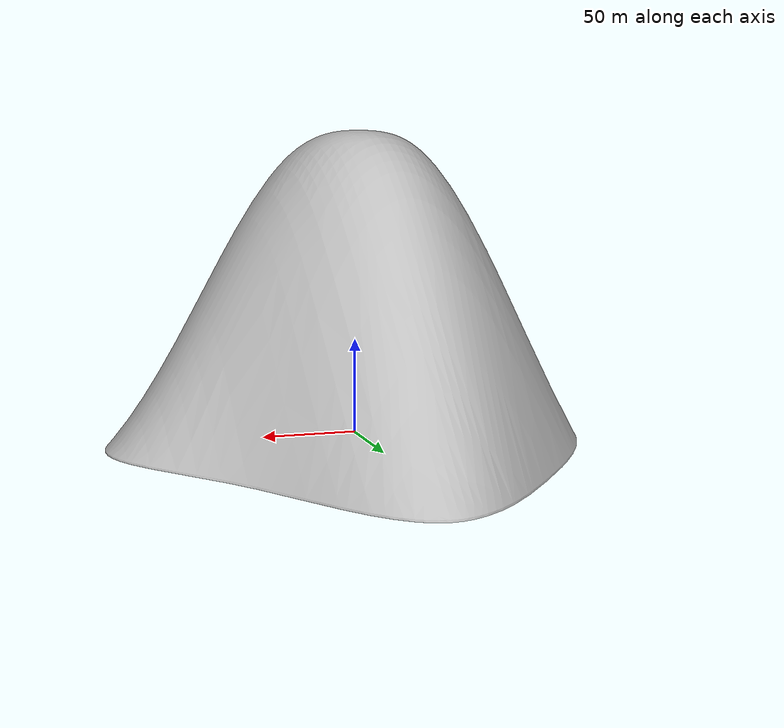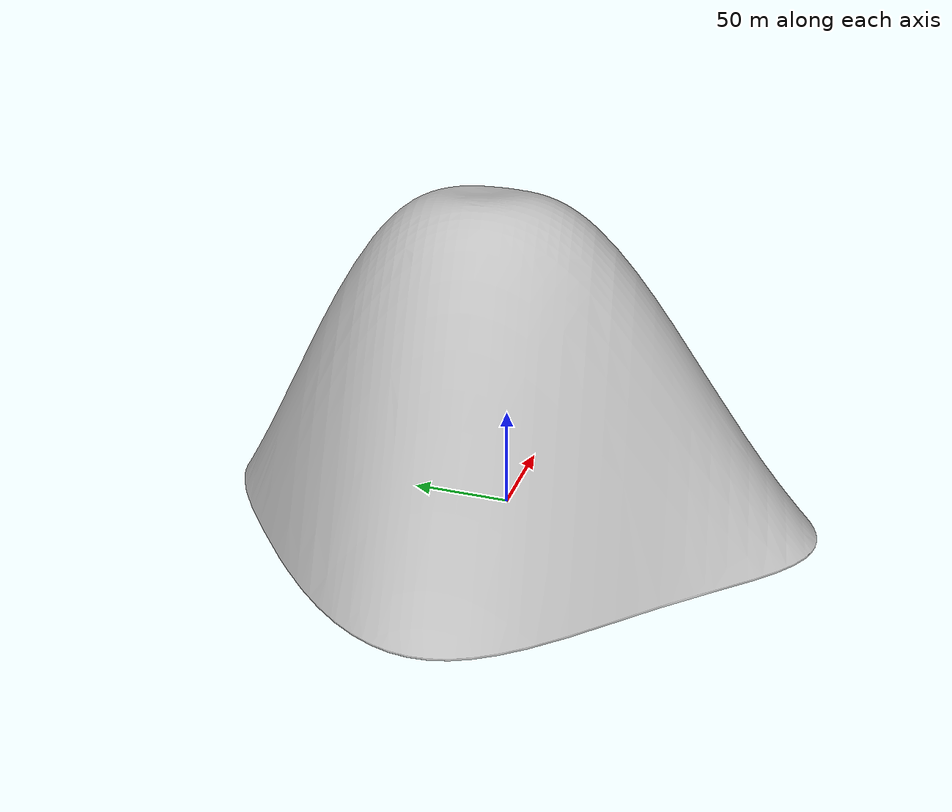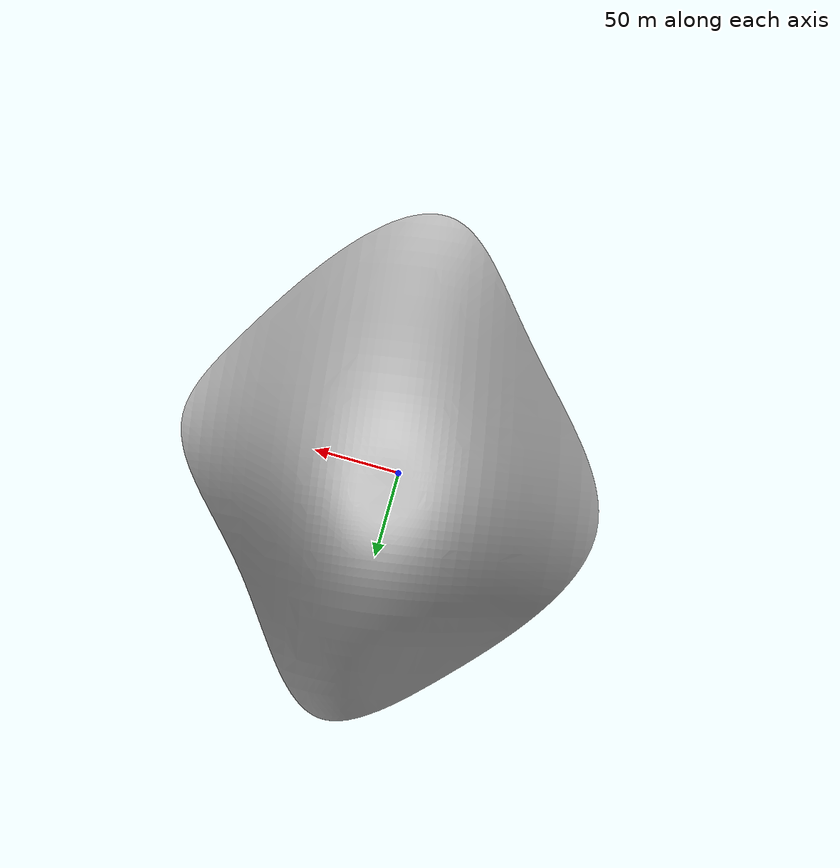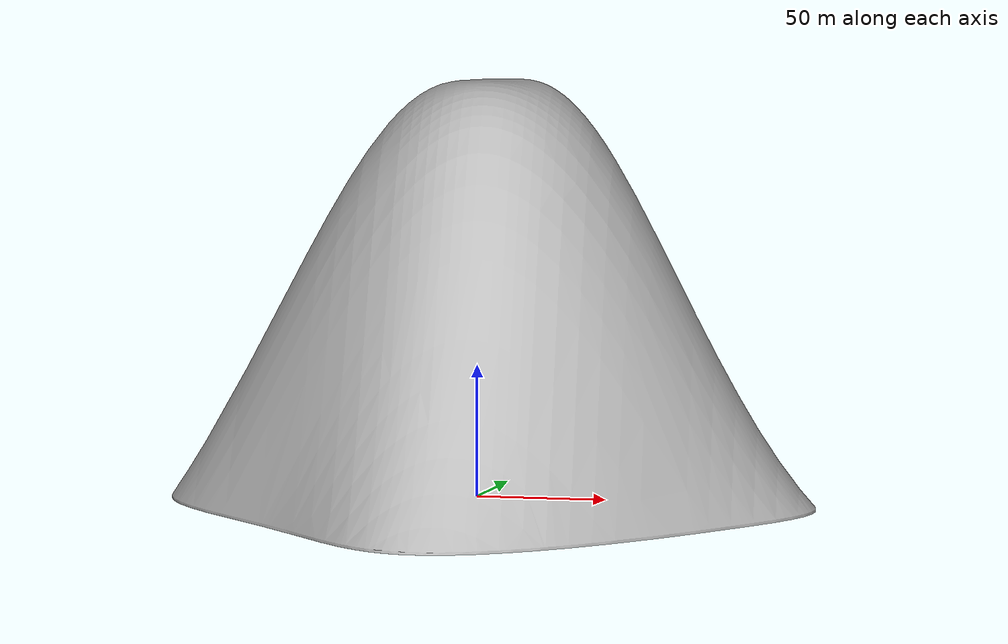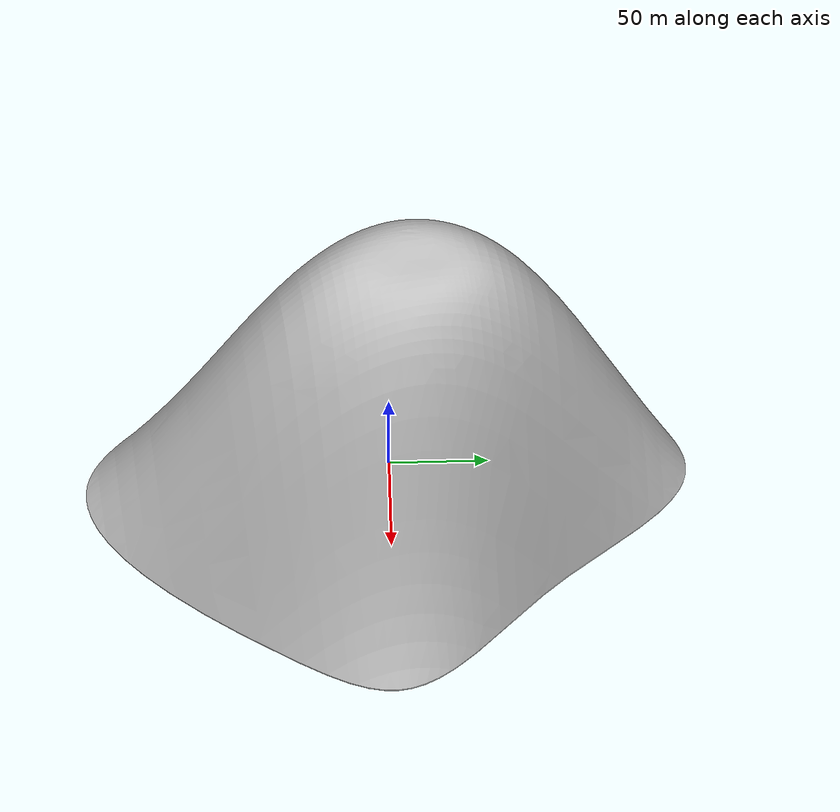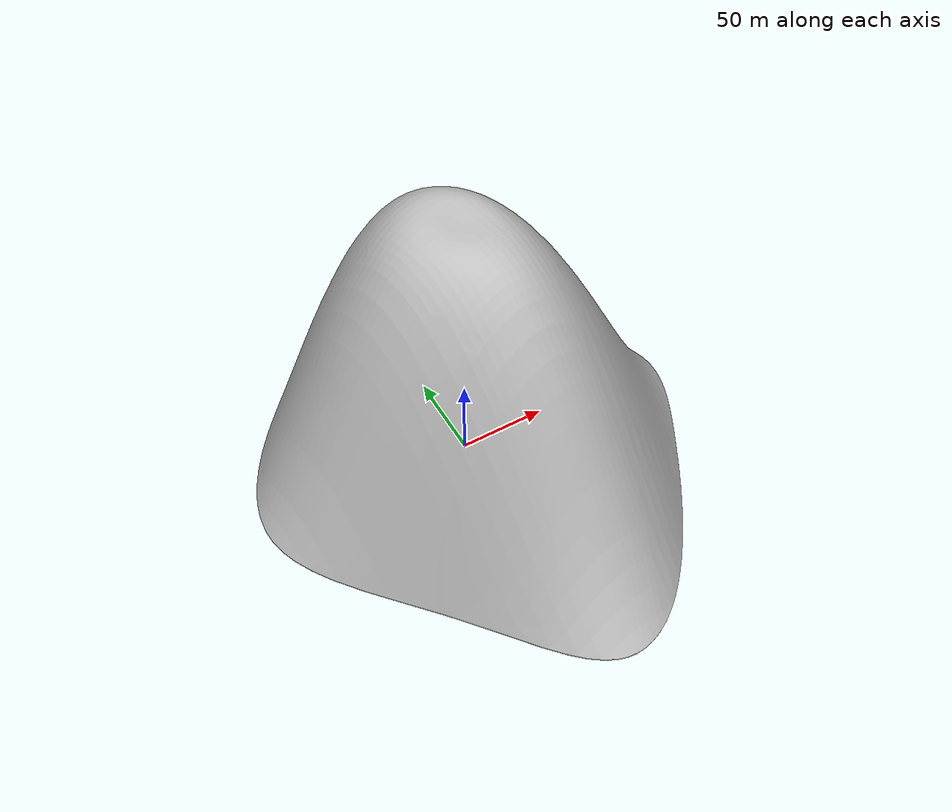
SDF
<?xml version="1.0" ?>
<sdf version="1.6">
  <model name="stockpile">
    <static>true</static>
    <link name="link">
      <collision name="collision">
        <geometry>
          <mesh>
            <scale>1 1 1</scale>
            <uri>model://stockpile/meshes/stockpile.stl</uri>
          </mesh>
           <surface>
            <friction>
              <ode>
                <mu>1.2</mu>
                <mu2>1.2</mu2>
              </ode>
            </friction>
          </surface>
        </geometry>
      </collision>
      <visual name="visual">
        <geometry>
          <mesh>
            <scale>1 1 1</scale>
            <uri>model://stockpile/meshes/stockpile.dae</uri>
          </mesh>
        </geometry>
      </visual>
    </link>
  </model>
</sdf>
